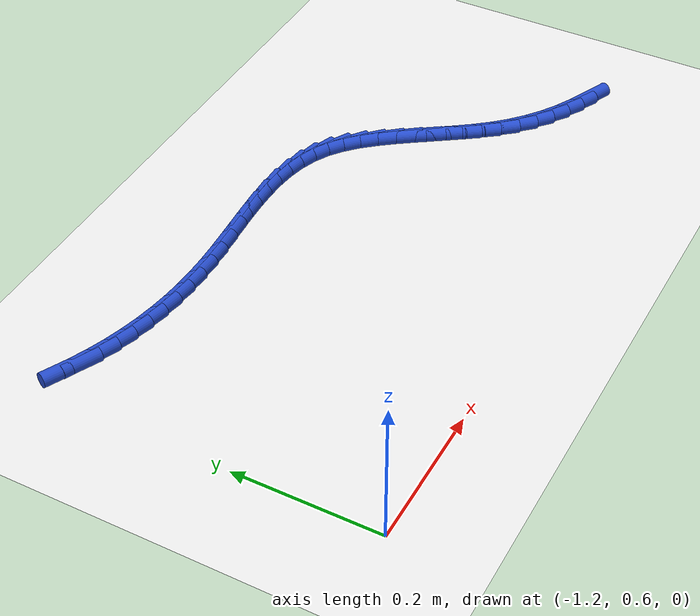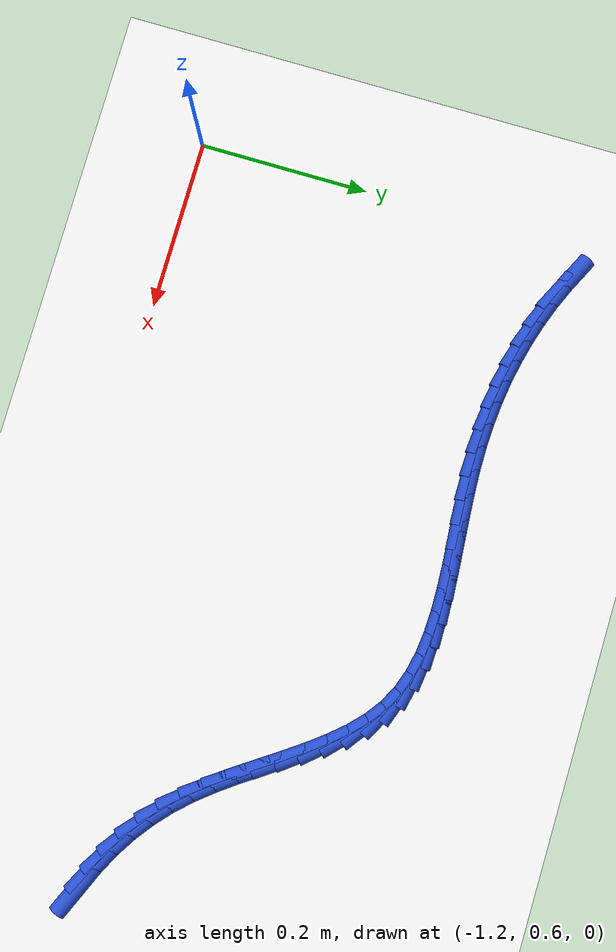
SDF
<sdf version="1.6">
 <world name="default">
  <model name="ground_plane">
   <static>1</static>
   <link name="link">
    <collision name="collision">
     <geometry><plane><normal>0 0 1</normal><size>100 100</size></plane></geometry>
     <surface><friction><ode><mu>100</mu><mu2>50</mu2></ode></friction></surface>
    </collision>
    <visual name="visual">
     <cast_shadows>0</cast_shadows>
     <geometry><plane><normal>0 0 1</normal><size>100 100</size></plane></geometry>
     <material>
      <script><uri>file://media/materials/scripts/gazebo.material</uri><name>Gazebo/WhiteGlow</name></script>
     </material>
    </visual>
   </link>
  </model>
  <model name="line">
   <link name="link_33">
    <pose>-0.3467873492805759 0.7129935480803647 0.01 0 1.57 -0.4081915126884785</pose>
    <collision name="collision">
     <geometry><cylinder><radius>0.01</radius><length>0.08</length></cylinder></geometry>
    </collision>
    <visual name="visual">
     <material>
      <script><name>Gazebo/Blue</name><uri>file://media/materials/scripts/gazebo.material</uri></script>
     </material>
     <geometry><cylinder><radius>0.01</radius><length>0.08</length></cylinder></geometry>
    </visual>
   </link>
   <link name="link_34">
    <pose>-0.37143402526774894 0.7236528108483139 0.01 0 1.57 -0.482426022428486</pose>
    <collision name="collision">
     <geometry><cylinder><radius>0.01</radius><length>0.08</length></cylinder></geometry>
    </collision>
    <visual name="visual">
     <material>
      <script><name>Gazebo/Blue</name><uri>file://media/materials/scripts/gazebo.material</uri></script>
     </material>
     <geometry><cylinder><radius>0.01</radius><length>0.08</length></cylinder></geometry>
    </visual>
   </link>
   <link name="link_35">
    <pose>-0.39503601347039424 0.7360131322005602 0.01 0 1.57 -0.5611184005027752</pose>
    <collision name="collision">
     <geometry><cylinder><radius>0.01</radius><length>0.08</length></cylinder></geometry>
    </collision>
    <visual name="visual">
     <material>
      <script><name>Gazebo/Blue</name><uri>file://media/materials/scripts/gazebo.material</uri></script>
     </material>
     <geometry><cylinder><radius>0.01</radius><length>0.08</length></cylinder></geometry>
    </visual>
   </link>
   <link name="link_36">
    <pose>-0.41750889945129255 0.7501375350775114 0.01 0 1.57 -0.6437112147604783</pose>
    <collision name="collision">
     <geometry><cylinder><radius>0.01</radius><length>0.08</length></cylinder></geometry>
    </collision>
    <visual name="visual">
     <material>
      <script><name>Gazebo/Blue</name><uri>file://media/materials/scripts/gazebo.material</uri></script>
     </material>
     <geometry><cylinder><radius>0.01</radius><length>0.08</length></cylinder></geometry>
    </visual>
   </link>
   <link name="link_37">
    <pose>-0.4387682687732251 0.7660890424195755 0.01 0 1.57 -0.72938192817124</pose>
    <collision name="collision">
     <geometry><cylinder><radius>0.01</radius><length>0.08</length></cylinder></geometry>
    </collision>
    <visual name="visual">
     <material>
      <script><name>Gazebo/Blue</name><uri>file://media/materials/scripts/gazebo.material</uri></script>
     </material>
     <geometry><cylinder><radius>0.01</radius><length>0.08</length></cylinder></geometry>
    </visual>
   </link>
   <link name="link_38">
    <pose>-0.4587297069989729 0.7839306771671614 0.01 0 1.57 -0.8158420235107297</pose>
    <collision name="collision">
     <geometry><cylinder><radius>0.01</radius><length>0.08</length></cylinder></geometry>
    </collision>
    <visual name="visual">
     <material>
      <script><name>Gazebo/Blue</name><uri>file://media/materials/scripts/gazebo.material</uri></script>
     </material>
     <geometry><cylinder><radius>0.01</radius><length>0.08</length></cylinder></geometry>
    </visual>
   </link>
   <link name="link_39">
    <pose>-0.4773277044500205 0.8036969933828818 0.01 0 1.57 -0.8875729127625017</pose>
    <collision name="collision">
     <geometry><cylinder><radius>0.01</radius><length>0.08</length></cylinder></geometry>
    </collision>
    <visual name="visual">
     <material>
      <script><name>Gazebo/Blue</name><uri>file://media/materials/scripts/gazebo.material</uri></script>
     </material>
     <geometry><cylinder><radius>0.01</radius><length>0.08</length></cylinder></geometry>
    </visual>
   </link>
   <link name="link_40">
    <pose>-0.49472843956770457 0.8250736435181769 0.01 0 1.57 -0.9360237430965254</pose>
    <collision name="collision">
     <geometry><cylinder><radius>0.01</radius><length>0.08</length></cylinder></geometry>
    </collision>
    <visual name="visual">
     <material>
      <script><name>Gazebo/Blue</name><uri>file://media/materials/scripts/gazebo.material</uri></script>
     </material>
     <geometry><cylinder><radius>0.01</radius><length>0.08</length></cylinder></geometry>
    </visual>
   </link>
   <link name="link_41">
    <pose>-0.5112534290885703 0.8475123544286918 0.01 0 1.57 -0.9627103448253748</pose>
    <collision name="collision">
     <geometry><cylinder><radius>0.01</radius><length>0.08</length></cylinder></geometry>
    </collision>
    <visual name="visual">
     <material>
      <script><name>Gazebo/Blue</name><uri>file://media/materials/scripts/gazebo.material</uri></script>
     </material>
     <geometry><cylinder><radius>0.01</radius><length>0.08</length></cylinder></geometry>
    </visual>
   </link>
   <link name="link_42">
    <pose>-0.5272270553042055 0.8704605377001627 0.01 0 1.57 -0.9685264278891036</pose>
    <collision name="collision">
     <geometry><cylinder><radius>0.01</radius><length>0.08</length></cylinder></geometry>
    </collision>
    <visual name="visual">
     <material>
      <script><name>Gazebo/Blue</name><uri>file://media/materials/scripts/gazebo.material</uri></script>
     </material>
     <geometry><cylinder><radius>0.01</radius><length>0.08</length></cylinder></geometry>
    </visual>
   </link>
   <link name="link_43">
    <pose>-0.5429737005061991 0.8933656049183274 0.01 0 1.57 -0.9532593532250917</pose>
    <collision name="collision">
     <geometry><cylinder><radius>0.01</radius><length>0.08</length></cylinder></geometry>
    </collision>
    <visual name="visual">
     <material>
      <script><name>Gazebo/Blue</name><uri>file://media/materials/scripts/gazebo.material</uri></script>
     </material>
     <geometry><cylinder><radius>0.01</radius><length>0.08</length></cylinder></geometry>
    </visual>
   </link>
   <link name="link_44">
    <pose>-0.5588177469861391 0.9156749676689233 0.01 0 1.57 -0.9154545720699168</pose>
    <collision name="collision">
     <geometry><cylinder><radius>0.01</radius><length>0.08</length></cylinder></geometry>
    </collision>
    <visual name="visual">
     <material>
      <script><name>Gazebo/Blue</name><uri>file://media/materials/scripts/gazebo.material</uri></script>
     </material>
     <geometry><cylinder><radius>0.01</radius><length>0.08</length></cylinder></geometry>
    </visual>
   </link>
   <link name="link_45">
    <pose>-0.575083577035614 0.9368360375376873 0.01 0 1.57 -0.852422544290583</pose>
    <collision name="collision">
     <geometry><cylinder><radius>0.01</radius><length>0.08</length></cylinder></geometry>
    </collision>
    <visual name="visual">
     <material>
      <script><name>Gazebo/Blue</name><uri>file://media/materials/scripts/gazebo.material</uri></script>
     </material>
     <geometry><cylinder><radius>0.01</radius><length>0.08</length></cylinder></geometry>
    </visual>
   </link>
   <link name="link_46">
    <pose>-0.5920955729462122 0.9562962261103565 0.01 0 1.57 -0.7605847960566386</pose>
    <collision name="collision">
     <geometry><cylinder><radius>0.01</radius><length>0.08</length></cylinder></geometry>
    </collision>
    <visual name="visual">
     <material>
      <script><name>Gazebo/Blue</name><uri>file://media/materials/scripts/gazebo.material</uri></script>
     </material>
     <geometry><cylinder><radius>0.01</radius><length>0.08</length></cylinder></geometry>
    </visual>
   </link>
   <link name="link_47">
    <pose>-0.6101781170095215 0.9735029449726681 0.01 0 1.57 -0.6366498602851868</pose>
    <collision name="collision">
     <geometry><cylinder><radius>0.01</radius><length>0.08</length></cylinder></geometry>
    </collision>
    <visual name="visual">
     <material>
      <script><name>Gazebo/Blue</name><uri>file://media/materials/scripts/gazebo.material</uri></script>
     </material>
     <geometry><cylinder><radius>0.01</radius><length>0.08</length></cylinder></geometry>
    </visual>
   </link>
   <link name="link_48">
    <pose>-0.6296555915171309 0.9879036057103594 0.01 0 1.57 -0.4834918458057998</pose>
    <collision name="collision">
     <geometry><cylinder><radius>0.01</radius><length>0.08</length></cylinder></geometry>
    </collision>
    <visual name="visual">
     <material>
      <script><name>Gazebo/Blue</name><uri>file://media/materials/scripts/gazebo.material</uri></script>
     </material>
     <geometry><cylinder><radius>0.01</radius><length>0.08</length></cylinder></geometry>
    </visual>
   </link>
   <link name="link_49">
    <pose>-0.6508155661732381 0.9990138028776434 0.01 0 1.57 -0.3348806330257192</pose>
    <collision name="collision">
     <geometry><cylinder><radius>0.01</radius><length>0.08</length></cylinder></geometry>
    </collision>
    <visual name="visual">
     <material>
      <script><name>Gazebo/Blue</name><uri>file://media/materials/scripts/gazebo.material</uri></script>
     </material>
     <geometry><cylinder><radius>0.01</radius><length>0.08</length></cylinder></geometry>
    </visual>
   </link>
   <link name="link_50">
    <pose>-0.6736212542924794 1.0069498924272768 0.01 0 1.57 -0.21090569408652016</pose>
    <collision name="collision">
     <geometry><cylinder><radius>0.01</radius><length>0.08</length></cylinder></geometry>
    </collision>
    <visual name="visual">
     <material>
      <script><name>Gazebo/Blue</name><uri>file://media/materials/scripts/gazebo.material</uri></script>
     </material>
     <geometry><cylinder><radius>0.01</radius><length>0.08</length></cylinder></geometry>
    </visual>
   </link>
   <link name="link_51">
    <pose>-0.6978671706627564 1.0121406877388295 0.01 0 1.57 -0.11243899534678568</pose>
    <collision name="collision">
     <geometry><cylinder><radius>0.01</radius><length>0.08</length></cylinder></geometry>
    </collision>
    <visual name="visual">
     <material>
      <script><name>Gazebo/Blue</name><uri>file://media/materials/scripts/gazebo.material</uri></script>
     </material>
     <geometry><cylinder><radius>0.01</radius><length>0.08</length></cylinder></geometry>
    </visual>
   </link>
   <link name="link_52">
    <pose>-0.7233463846549669 1.0150176793419718 0.01 0 1.57 -0.03750953011272407</pose>
    <collision name="collision">
     <geometry><cylinder><radius>0.01</radius><length>0.08</length></cylinder></geometry>
    </collision>
    <visual name="visual">
     <material>
      <script><name>Gazebo/Blue</name><uri>file://media/materials/scripts/gazebo.material</uri></script>
     </material>
     <geometry><cylinder><radius>0.01</radius><length>0.08</length></cylinder></geometry>
    </visual>
   </link>
   <link name="link_53">
    <pose>-0.7498519656400087 1.0160123577663738 0.01 0 1.57 0.016691731805753937</pose>
    <collision name="collision">
     <geometry><cylinder><radius>0.01</radius><length>0.08</length></cylinder></geometry>
    </collision>
    <visual name="visual">
     <material>
      <script><name>Gazebo/Blue</name><uri>file://media/materials/scripts/gazebo.material</uri></script>
     </material>
     <geometry><cylinder><radius>0.01</radius><length>0.08</length></cylinder></geometry>
    </visual>
   </link>
   <link name="link_54">
    <pose>-0.7771769829887794 1.0155562135417049 0.01 0 1.57 0.052764405878739776</pose>
    <collision name="collision">
     <geometry><cylinder><radius>0.01</radius><length>0.08</length></cylinder></geometry>
    </collision>
    <visual name="visual">
     <material>
      <script><name>Gazebo/Blue</name><uri>file://media/materials/scripts/gazebo.material</uri></script>
     </material>
     <geometry><cylinder><radius>0.01</radius><length>0.08</length></cylinder></geometry>
    </visual>
   </link>
   <link name="link_55">
    <pose>-0.8051145060721775 1.0140807371976355 0.01 0 1.57 0.07266970575021672</pose>
    <collision name="collision">
     <geometry><cylinder><radius>0.01</radius><length>0.08</length></cylinder></geometry>
    </collision>
    <visual name="visual">
     <material>
      <script><name>Gazebo/Blue</name><uri>file://media/materials/scripts/gazebo.material</uri></script>
     </material>
     <geometry><cylinder><radius>0.01</radius><length>0.08</length></cylinder></geometry>
    </visual>
   </link>
   <link name="link_56">
    <pose>-0.8334576042611003 1.0120174192638356 0.01 0 1.57 0.07761299995104612</pose>
    <collision name="collision">
     <geometry><cylinder><radius>0.01</radius><length>0.08</length></cylinder></geometry>
    </collision>
    <visual name="visual">
     <material>
      <script><name>Gazebo/Blue</name><uri>file://media/materials/scripts/gazebo.material</uri></script>
     </material>
     <geometry><cylinder><radius>0.01</radius><length>0.08</length></cylinder></geometry>
    </visual>
   </link>
   <link name="link_57">
    <pose>-0.8619993469264459 1.0097977502699749 0.01 0 1.57 0.0680438963883847</pose>
    <collision name="collision">
     <geometry><cylinder><radius>0.01</radius><length>0.08</length></cylinder></geometry>
    </collision>
    <visual name="visual">
     <material>
      <script><name>Gazebo/Blue</name><uri>file://media/materials/scripts/gazebo.material</uri></script>
     </material>
     <geometry><cylinder><radius>0.01</radius><length>0.08</length></cylinder></geometry>
    </visual>
   </link>
   <link name="link_58">
    <pose>-0.8905328034391122 1.0078532207457238 0.01 0 1.57 0.04368604610397031</pose>
    <collision name="collision">
     <geometry><cylinder><radius>0.01</radius><length>0.08</length></cylinder></geometry>
    </collision>
    <visual name="visual">
     <material>
      <script><name>Gazebo/Blue</name><uri>file://media/materials/scripts/gazebo.material</uri></script>
     </material>
     <geometry><cylinder><radius>0.01</radius><length>0.08</length></cylinder></geometry>
    </visual>
   </link>
   <link name="link_59">
    <pose>-0.9188510431699966 1.0066153212207514 0.01 0 1.57 0.004650970503568332</pose>
    <collision name="collision">
     <geometry><cylinder><radius>0.01</radius><length>0.08</length></cylinder></geometry>
    </collision>
    <visual name="visual">
     <material>
      <script><name>Gazebo/Blue</name><uri>file://media/materials/scripts/gazebo.material</uri></script>
     </material>
     <geometry><cylinder><radius>0.01</radius><length>0.08</length></cylinder></geometry>
    </visual>
   </link>
   <link name="link_60">
    <pose>-0.9467628874199434 1.0064855031203888 0.01 0 1.57 -0.040977681511806634</pose>
    <collision name="collision">
     <geometry><cylinder><radius>0.01</radius><length>0.08</length></cylinder></geometry>
    </collision>
    <visual name="visual">
     <material>
      <script><name>Gazebo/Blue</name><uri>file://media/materials/scripts/gazebo.material</uri></script>
     </material>
     <geometry><cylinder><radius>0.01</radius><length>0.08</length></cylinder></geometry>
    </visual>
   </link>
   <link name="link_61">
    <pose>-0.9742105306042603 1.0076108738679797 0.01 0 1.57 -0.08866702646823589</pose>
    <collision name="collision">
     <geometry><cylinder><radius>0.01</radius><length>0.08</length></cylinder></geometry>
    </collision>
    <visual name="visual">
     <material>
      <script><name>Gazebo/Blue</name><uri>file://media/materials/scripts/gazebo.material</uri></script>
     </material>
     <geometry><cylinder><radius>0.01</radius><length>0.08</length></cylinder></geometry>
    </visual>
   </link>
   <link name="link_62">
    <pose>-1.001203291697937 1.0100105336103644 0.01 0 1.57 -0.1381868890879453</pose>
    <collision name="collision">
     <geometry><cylinder><radius>0.01</radius><length>0.08</length></cylinder></geometry>
    </collision>
    <visual name="visual">
     <material>
      <script><name>Gazebo/Blue</name><uri>file://media/materials/scripts/gazebo.material</uri></script>
     </material>
     <geometry><cylinder><radius>0.01</radius><length>0.08</length></cylinder></geometry>
    </visual>
   </link>
   <link name="link_63">
    <pose>-1.0277509998403795 1.0137026096052106 0.01 0 1.57 -0.18928607457031812</pose>
    <collision name="collision">
     <geometry><cylinder><radius>0.01</radius><length>0.08</length></cylinder></geometry>
    </collision>
    <visual name="visual">
     <material>
      <script><name>Gazebo/Blue</name><uri>file://media/materials/scripts/gazebo.material</uri></script>
     </material>
     <geometry><cylinder><radius>0.01</radius><length>0.08</length></cylinder></geometry>
    </visual>
   </link>
   <link name="link_64">
    <pose>-1.0538634841709917 1.0187052291101863 0.01 0 1.57 -0.24166065429069838</pose>
    <collision name="collision">
     <geometry><cylinder><radius>0.01</radius><length>0.08</length></cylinder></geometry>
    </collision>
    <visual name="visual">
     <material>
      <script><name>Gazebo/Blue</name><uri>file://media/materials/scripts/gazebo.material</uri></script>
     </material>
     <geometry><cylinder><radius>0.01</radius><length>0.08</length></cylinder></geometry>
    </visual>
   </link>
   <link name="link_65">
    <pose>-1.0795505738291802 1.0250365193829598 0.01 0 1.57 -0.29496108598115545</pose>
    <collision name="collision">
     <geometry><cylinder><radius>0.01</radius><length>0.08</length></cylinder></geometry>
    </collision>
    <visual name="visual">
     <material>
      <script><name>Gazebo/Blue</name><uri>file://media/materials/scripts/gazebo.material</uri></script>
     </material>
     <geometry><cylinder><radius>0.01</radius><length>0.08</length></cylinder></geometry>
    </visual>
   </link>
   <link name="link_66">
    <pose>-1.1048220979543493 1.0327146076811984 0.01 0 1.57 -0.3488032883984521</pose>
    <collision name="collision">
     <geometry><cylinder><radius>0.01</radius><length>0.08</length></cylinder></geometry>
    </collision>
    <visual name="visual">
     <material>
      <script><name>Gazebo/Blue</name><uri>file://media/materials/scripts/gazebo.material</uri></script>
     </material>
     <geometry><cylinder><radius>0.01</radius><length>0.08</length></cylinder></geometry>
    </visual>
   </link>
   <link name="link_67">
    <pose>-1.1296878856859043 1.04175762126257 0.01 0 1.57 -0.4027829670755814</pose>
    <collision name="collision">
     <geometry><cylinder><radius>0.01</radius><length>0.08</length></cylinder></geometry>
    </collision>
    <visual name="visual">
     <material>
      <script><name>Gazebo/Blue</name><uri>file://media/materials/scripts/gazebo.material</uri></script>
     </material>
     <geometry><cylinder><radius>0.01</radius><length>0.08</length></cylinder></geometry>
    </visual>
   </link>
   <link name="link_68">
    <pose>-1.1541577661632507 1.0521836873847434 0.01 0 1.57 -0.4564919416526638</pose>
    <collision name="collision">
     <geometry><cylinder><radius>0.01</radius><length>0.08</length></cylinder></geometry>
    </collision>
    <visual name="visual">
     <material>
      <script><name>Gazebo/Blue</name><uri>file://media/materials/scripts/gazebo.material</uri></script>
     </material>
     <geometry><cylinder><radius>0.01</radius><length>0.08</length></cylinder></geometry>
    </visual>
   </link>
  </model>
 </world>
</sdf>
